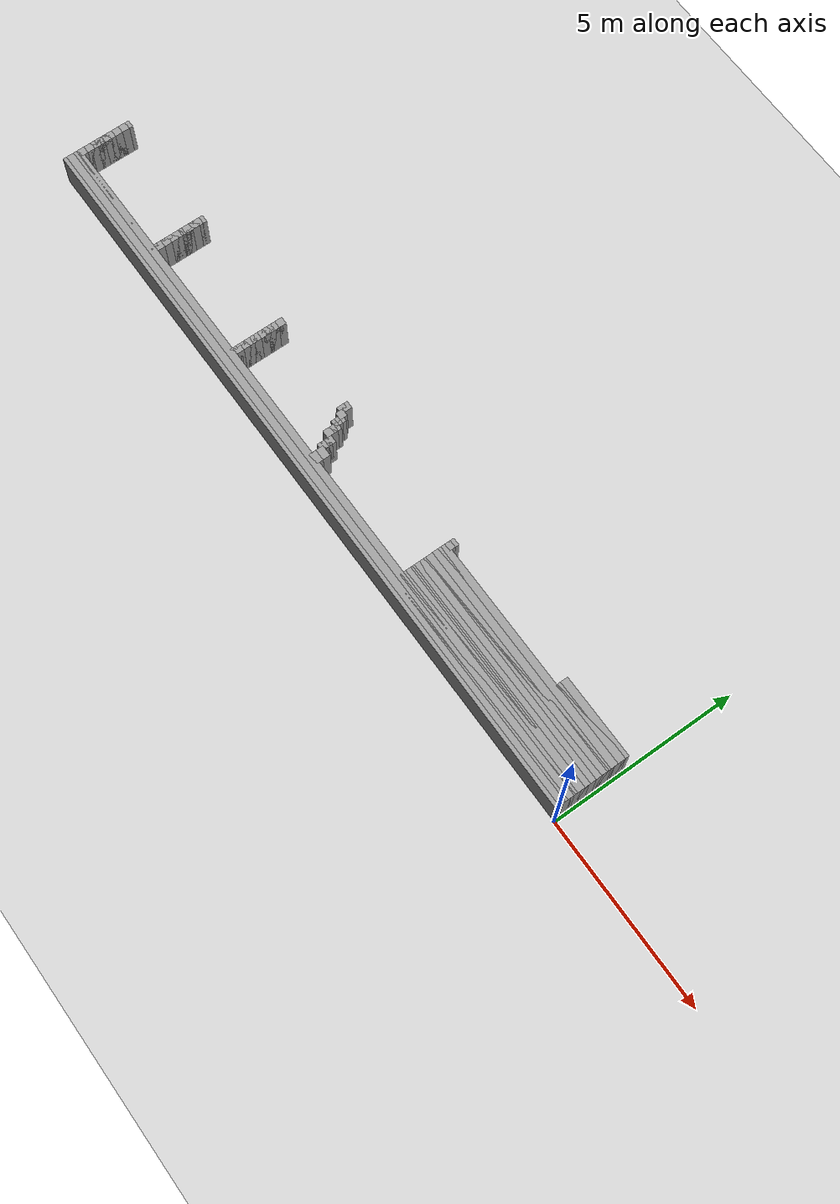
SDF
<sdf version="1.6">
 <world name="GridMap">
  <include><uri>model://sun</uri></include>
  <include><uri>model://ground_plane</uri></include>
  <model name="GridMap">
   <link name="Wall_(99.5,0.0)">
    <collision name="Wall_(99.5,0.0)_Collision">
     <geometry><box><size>19.900000000000002 0.2 1.0</size></box></geometry>
     <pose>-9.950000000000001 0.0 0.5 0 -0 0</pose>
    </collision>
    <visual name="Wall_(99.5,0.0)_Visual">
     <geometry><box><size>19.900000000000002 0.2 1.0</size></box></geometry>
     <pose>-9.950000000000001 0.0 0.5 0 -0 0</pose>
     <material>
      <script><uri>file://media/materials/scripts/gazebo.material</uri><name>Gazebo/Grey</name></script>
      <ambient>1 1 1 1</ambient>
     </material>
     <meta><layer>0</layer></meta>
    </visual>
    <pose>0 0 0.5 0 -0 0</pose>
   </link>
   <link name="Wall_(99.5,1.0)">
    <collision name="Wall_(99.5,1.0)_Collision">
     <geometry><box><size>19.900000000000002 0.2 1.0</size></box></geometry>
     <pose>-9.950000000000001 0.1 0.5 0 -0 0</pose>
    </collision>
    <visual name="Wall_(99.5,1.0)_Visual">
     <geometry><box><size>19.900000000000002 0.2 1.0</size></box></geometry>
     <pose>-9.950000000000001 0.1 0.5 0 -0 0</pose>
     <material>
      <script><uri>file://media/materials/scripts/gazebo.material</uri><name>Gazebo/Grey</name></script>
      <ambient>1 1 1 1</ambient>
     </material>
     <meta><layer>0</layer></meta>
    </visual>
    <pose>0 0 0.5 0 -0 0</pose>
   </link>
   <link name="Wall_(99.5,2.0)">
    <collision name="Wall_(99.5,2.0)_Collision">
     <geometry><box><size>19.900000000000002 0.2 1.0</size></box></geometry>
     <pose>-9.950000000000001 0.2 0.5 0 -0 0</pose>
    </collision>
    <visual name="Wall_(99.5,2.0)_Visual">
     <geometry><box><size>19.900000000000002 0.2 1.0</size></box></geometry>
     <pose>-9.950000000000001 0.2 0.5 0 -0 0</pose>
     <material>
      <script><uri>file://media/materials/scripts/gazebo.material</uri><name>Gazebo/Grey</name></script>
      <ambient>1 1 1 1</ambient>
     </material>
     <meta><layer>0</layer></meta>
    </visual>
    <pose>0 0 0.5 0 -0 0</pose>
   </link>
   <link name="Wall_(99.5,3.0)">
    <collision name="Wall_(99.5,3.0)_Collision">
     <geometry><box><size>19.900000000000002 0.2 1.0</size></box></geometry>
     <pose>-9.950000000000001 0.30000000000000004 0.5 0 -0 0</pose>
    </collision>
    <visual name="Wall_(99.5,3.0)_Visual">
     <geometry><box><size>19.900000000000002 0.2 1.0</size></box></geometry>
     <pose>-9.950000000000001 0.30000000000000004 0.5 0 -0 0</pose>
     <material>
      <script><uri>file://media/materials/scripts/gazebo.material</uri><name>Gazebo/Grey</name></script>
      <ambient>1 1 1 1</ambient>
     </material>
     <meta><layer>0</layer></meta>
    </visual>
    <pose>0 0 0.5 0 -0 0</pose>
   </link>
   <link name="Wall_(31.5,4.0)">
    <collision name="Wall_(31.5,4.0)_Collision">
     <geometry><box><size>6.300000000000001 0.2 1.0</size></box></geometry>
     <pose>-3.1500000000000004 0.4 0.5 0 -0 0</pose>
    </collision>
    <visual name="Wall_(31.5,4.0)_Visual">
     <geometry><box><size>6.300000000000001 0.2 1.0</size></box></geometry>
     <pose>-3.1500000000000004 0.4 0.5 0 -0 0</pose>
     <material>
      <script><uri>file://media/materials/scripts/gazebo.material</uri><name>Gazebo/Grey</name></script>
      <ambient>1 1 1 1</ambient>
     </material>
     <meta><layer>0</layer></meta>
    </visual>
    <pose>0 0 0.5 0 -0 0</pose>
   </link>
   <link name="Wall_(97.5,4.0)">
    <collision name="Wall_(97.5,4.0)_Collision">
     <geometry><box><size>0.30000000000000004 0.2 1.0</size></box></geometry>
     <pose>-9.75 0.4 0.5 0 -0 0</pose>
    </collision>
    <visual name="Wall_(97.5,4.0)_Visual">
     <geometry><box><size>0.30000000000000004 0.2 1.0</size></box></geometry>
     <pose>-9.75 0.4 0.5 0 -0 0</pose>
     <material>
      <script><uri>file://media/materials/scripts/gazebo.material</uri><name>Gazebo/Grey</name></script>
      <ambient>1 1 1 1</ambient>
     </material>
     <meta><layer>0</layer></meta>
    </visual>
    <pose>0 0 0.5 0 -0 0</pose>
   </link>
   <link name="Wall_(131.0,4.0)">
    <collision name="Wall_(131.0,4.0)_Collision">
     <geometry><box><size>0.2 0.2 1.0</size></box></geometry>
     <pose>-13.100000000000001 0.4 0.5 0 -0 0</pose>
    </collision>
    <visual name="Wall_(131.0,4.0)_Visual">
     <geometry><box><size>0.2 0.2 1.0</size></box></geometry>
     <pose>-13.100000000000001 0.4 0.5 0 -0 0</pose>
     <material>
      <script><uri>file://media/materials/scripts/gazebo.material</uri><name>Gazebo/Grey</name></script>
      <ambient>1 1 1 1</ambient>
     </material>
     <meta><layer>0</layer></meta>
    </visual>
    <pose>0 0 0.5 0 -0 0</pose>
   </link>
   <link name="Wall_(165.0,4.0)">
    <collision name="Wall_(165.0,4.0)_Collision">
     <geometry><box><size>0.2 0.2 1.0</size></box></geometry>
     <pose>-16.5 0.4 0.5 0 -0 0</pose>
    </collision>
    <visual name="Wall_(165.0,4.0)_Visual">
     <geometry><box><size>0.2 0.2 1.0</size></box></geometry>
     <pose>-16.5 0.4 0.5 0 -0 0</pose>
     <material>
      <script><uri>file://media/materials/scripts/gazebo.material</uri><name>Gazebo/Grey</name></script>
      <ambient>1 1 1 1</ambient>
     </material>
     <meta><layer>0</layer></meta>
    </visual>
    <pose>0 0 0.5 0 -0 0</pose>
   </link>
   <link name="Wall_(198.0,4.0)">
    <collision name="Wall_(198.0,4.0)_Collision">
     <geometry><box><size>0.2 0.2 1.0</size></box></geometry>
     <pose>-19.8 0.4 0.5 0 -0 0</pose>
    </collision>
    <visual name="Wall_(198.0,4.0)_Visual">
     <geometry><box><size>0.2 0.2 1.0</size></box></geometry>
     <pose>-19.8 0.4 0.5 0 -0 0</pose>
     <material>
      <script><uri>file://media/materials/scripts/gazebo.material</uri><name>Gazebo/Grey</name></script>
      <ambient>1 1 1 1</ambient>
     </material>
     <meta><layer>0</layer></meta>
    </visual>
    <pose>0 0 0.5 0 -0 0</pose>
   </link>
   <link name="Wall_(31.5,5.0)">
    <collision name="Wall_(31.5,5.0)_Collision">
     <geometry><box><size>6.300000000000001 0.2 1.0</size></box></geometry>
     <pose>-3.1500000000000004 0.5 0.5 0 -0 0</pose>
    </collision>
    <visual name="Wall_(31.5,5.0)_Visual">
     <geometry><box><size>6.300000000000001 0.2 1.0</size></box></geometry>
     <pose>-3.1500000000000004 0.5 0.5 0 -0 0</pose>
     <material>
      <script><uri>file://media/materials/scripts/gazebo.material</uri><name>Gazebo/Grey</name></script>
      <ambient>1 1 1 1</ambient>
     </material>
     <meta><layer>0</layer></meta>
    </visual>
    <pose>0 0 0.5 0 -0 0</pose>
   </link>
   <link name="Wall_(97.5,5.0)">
    <collision name="Wall_(97.5,5.0)_Collision">
     <geometry><box><size>0.30000000000000004 0.2 1.0</size></box></geometry>
     <pose>-9.75 0.5 0.5 0 -0 0</pose>
    </collision>
    <visual name="Wall_(97.5,5.0)_Visual">
     <geometry><box><size>0.30000000000000004 0.2 1.0</size></box></geometry>
     <pose>-9.75 0.5 0.5 0 -0 0</pose>
     <material>
      <script><uri>file://media/materials/scripts/gazebo.material</uri><name>Gazebo/Grey</name></script>
      <ambient>1 1 1 1</ambient>
     </material>
     <meta><layer>0</layer></meta>
    </visual>
    <pose>0 0 0.5 0 -0 0</pose>
   </link>
   <link name="Wall_(131.0,5.0)">
    <collision name="Wall_(131.0,5.0)_Collision">
     <geometry><box><size>0.2 0.2 1.0</size></box></geometry>
     <pose>-13.100000000000001 0.5 0.5 0 -0 0</pose>
    </collision>
    <visual name="Wall_(131.0,5.0)_Visual">
     <geometry><box><size>0.2 0.2 1.0</size></box></geometry>
     <pose>-13.100000000000001 0.5 0.5 0 -0 0</pose>
     <material>
      <script><uri>file://media/materials/scripts/gazebo.material</uri><name>Gazebo/Grey</name></script>
      <ambient>1 1 1 1</ambient>
     </material>
     <meta><layer>0</layer></meta>
    </visual>
    <pose>0 0 0.5 0 -0 0</pose>
   </link>
   <link name="Wall_(165.0,5.0)">
    <collision name="Wall_(165.0,5.0)_Collision">
     <geometry><box><size>0.2 0.2 1.0</size></box></geometry>
     <pose>-16.5 0.5 0.5 0 -0 0</pose>
    </collision>
    <visual name="Wall_(165.0,5.0)_Visual">
     <geometry><box><size>0.2 0.2 1.0</size></box></geometry>
     <pose>-16.5 0.5 0.5 0 -0 0</pose>
     <material>
      <script><uri>file://media/materials/scripts/gazebo.material</uri><name>Gazebo/Grey</name></script>
      <ambient>1 1 1 1</ambient>
     </material>
     <meta><layer>0</layer></meta>
    </visual>
    <pose>0 0 0.5 0 -0 0</pose>
   </link>
   <link name="Wall_(198.0,5.0)">
    <collision name="Wall_(198.0,5.0)_Collision">
     <geometry><box><size>0.2 0.2 1.0</size></box></geometry>
     <pose>-19.8 0.5 0.5 0 -0 0</pose>
    </collision>
    <visual name="Wall_(198.0,5.0)_Visual">
     <geometry><box><size>0.2 0.2 1.0</size></box></geometry>
     <pose>-19.8 0.5 0.5 0 -0 0</pose>
     <material>
      <script><uri>file://media/materials/scripts/gazebo.material</uri><name>Gazebo/Grey</name></script>
      <ambient>1 1 1 1</ambient>
     </material>
     <meta><layer>0</layer></meta>
    </visual>
    <pose>0 0 0.5 0 -0 0</pose>
   </link>
   <link name="Wall_(31.5,6.0)">
    <collision name="Wall_(31.5,6.0)_Collision">
     <geometry><box><size>6.300000000000001 0.2 1.0</size></box></geometry>
     <pose>-3.1500000000000004 0.6000000000000001 0.5 0 -0 0</pose>
    </collision>
    <visual name="Wall_(31.5,6.0)_Visual">
     <geometry><box><size>6.300000000000001 0.2 1.0</size></box></geometry>
     <pose>-3.1500000000000004 0.6000000000000001 0.5 0 -0 0</pose>
     <material>
      <script><uri>file://media/materials/scripts/gazebo.material</uri><name>Gazebo/Grey</name></script>
      <ambient>1 1 1 1</ambient>
     </material>
     <meta><layer>0</layer></meta>
    </visual>
    <pose>0 0 0.5 0 -0 0</pose>
   </link>
   <link name="Wall_(97.5,6.0)">
    <collision name="Wall_(97.5,6.0)_Collision">
     <geometry><box><size>0.30000000000000004 0.2 1.0</size></box></geometry>
     <pose>-9.75 0.6000000000000001 0.5 0 -0 0</pose>
    </collision>
    <visual name="Wall_(97.5,6.0)_Visual">
     <geometry><box><size>0.30000000000000004 0.2 1.0</size></box></geometry>
     <pose>-9.75 0.6000000000000001 0.5 0 -0 0</pose>
     <material>
      <script><uri>file://media/materials/scripts/gazebo.material</uri><name>Gazebo/Grey</name></script>
      <ambient>1 1 1 1</ambient>
     </material>
     <meta><layer>0</layer></meta>
    </visual>
    <pose>0 0 0.5 0 -0 0</pose>
   </link>
   <link name="Wall_(131.0,6.0)">
    <collision name="Wall_(131.0,6.0)_Collision">
     <geometry><box><size>0.2 0.2 1.0</size></box></geometry>
     <pose>-13.100000000000001 0.6000000000000001 0.5 0 -0 0</pose>
    </collision>
    <visual name="Wall_(131.0,6.0)_Visual">
     <geometry><box><size>0.2 0.2 1.0</size></box></geometry>
     <pose>-13.100000000000001 0.6000000000000001 0.5 0 -0 0</pose>
     <material>
      <script><uri>file://media/materials/scripts/gazebo.material</uri><name>Gazebo/Grey</name></script>
      <ambient>1 1 1 1</ambient>
     </material>
     <meta><layer>0</layer></meta>
    </visual>
    <pose>0 0 0.5 0 -0 0</pose>
   </link>
   <link name="Wall_(165.0,6.0)">
    <collision name="Wall_(165.0,6.0)_Collision">
     <geometry><box><size>0.2 0.2 1.0</size></box></geometry>
     <pose>-16.5 0.6000000000000001 0.5 0 -0 0</pose>
    </collision>
    <visual name="Wall_(165.0,6.0)_Visual">
     <geometry><box><size>0.2 0.2 1.0</size></box></geometry>
     <pose>-16.5 0.6000000000000001 0.5 0 -0 0</pose>
     <material>
      <script><uri>file://media/materials/scripts/gazebo.material</uri><name>Gazebo/Grey</name></script>
      <ambient>1 1 1 1</ambient>
     </material>
     <meta><layer>0</layer></meta>
    </visual>
    <pose>0 0 0.5 0 -0 0</pose>
   </link>
   <link name="Wall_(198.0,6.0)">
    <collision name="Wall_(198.0,6.0)_Collision">
     <geometry><box><size>0.2 0.2 1.0</size></box></geometry>
     <pose>-19.8 0.6000000000000001 0.5 0 -0 0</pose>
    </collision>
    <visual name="Wall_(198.0,6.0)_Visual">
     <geometry><box><size>0.2 0.2 1.0</size></box></geometry>
     <pose>-19.8 0.6000000000000001 0.5 0 -0 0</pose>
     <material>
      <script><uri>file://media/materials/scripts/gazebo.material</uri><name>Gazebo/Grey</name></script>
      <ambient>1 1 1 1</ambient>
     </material>
     <meta><layer>0</layer></meta>
    </visual>
    <pose>0 0 0.5 0 -0 0</pose>
   </link>
   <link name="Wall_(31.5,7.0)">
    <collision name="Wall_(31.5,7.0)_Collision">
     <geometry><box><size>6.300000000000001 0.2 1.0</size></box></geometry>
     <pose>-3.1500000000000004 0.7000000000000001 0.5 0 -0 0</pose>
    </collision>
    <visual name="Wall_(31.5,7.0)_Visual">
     <geometry><box><size>6.300000000000001 0.2 1.0</size></box></geometry>
     <pose>-3.1500000000000004 0.7000000000000001 0.5 0 -0 0</pose>
     <material>
      <script><uri>file://media/materials/scripts/gazebo.material</uri><name>Gazebo/Grey</name></script>
      <ambient>1 1 1 1</ambient>
     </material>
     <meta><layer>0</layer></meta>
    </visual>
    <pose>0 0 0.5 0 -0 0</pose>
   </link>
   <link name="Wall_(99.0,7.0)">
    <collision name="Wall_(99.0,7.0)_Collision">
     <geometry><box><size>0.2 0.2 1.0</size></box></geometry>
     <pose>-9.9 0.7000000000000001 0.5 0 -0 0</pose>
    </collision>
    <visual name="Wall_(99.0,7.0)_Visual">
     <geometry><box><size>0.2 0.2 1.0</size></box></geometry>
     <pose>-9.9 0.7000000000000001 0.5 0 -0 0</pose>
     <material>
      <script><uri>file://media/materials/scripts/gazebo.material</uri><name>Gazebo/Grey</name></script>
      <ambient>1 1 1 1</ambient>
     </material>
     <meta><layer>0</layer></meta>
    </visual>
    <pose>0 0 0.5 0 -0 0</pose>
   </link>
   <link name="Wall_(131.0,7.0)">
    <collision name="Wall_(131.0,7.0)_Collision">
     <geometry><box><size>0.2 0.2 1.0</size></box></geometry>
     <pose>-13.100000000000001 0.7000000000000001 0.5 0 -0 0</pose>
    </collision>
    <visual name="Wall_(131.0,7.0)_Visual">
     <geometry><box><size>0.2 0.2 1.0</size></box></geometry>
     <pose>-13.100000000000001 0.7000000000000001 0.5 0 -0 0</pose>
     <material>
      <script><uri>file://media/materials/scripts/gazebo.material</uri><name>Gazebo/Grey</name></script>
      <ambient>1 1 1 1</ambient>
     </material>
     <meta><layer>0</layer></meta>
    </visual>
    <pose>0 0 0.5 0 -0 0</pose>
   </link>
   <link name="Wall_(165.0,7.0)">
    <collision name="Wall_(165.0,7.0)_Collision">
     <geometry><box><size>0.2 0.2 1.0</size></box></geometry>
     <pose>-16.5 0.7000000000000001 0.5 0 -0 0</pose>
    </collision>
    <visual name="Wall_(165.0,7.0)_Visual">
     <geometry><box><size>0.2 0.2 1.0</size></box></geometry>
     <pose>-16.5 0.7000000000000001 0.5 0 -0 0</pose>
     <material>
      <script><uri>file://media/materials/scripts/gazebo.material</uri><name>Gazebo/Grey</name></script>
      <ambient>1 1 1 1</ambient>
     </material>
     <meta><layer>0</layer></meta>
    </visual>
    <pose>0 0 0.5 0 -0 0</pose>
   </link>
   <link name="Wall_(198.0,7.0)">
    <collision name="Wall_(198.0,7.0)_Collision">
     <geometry><box><size>0.2 0.2 1.0</size></box></geometry>
     <pose>-19.8 0.7000000000000001 0.5 0 -0 0</pose>
    </collision>
    <visual name="Wall_(198.0,7.0)_Visual">
     <geometry><box><size>0.2 0.2 1.0</size></box></geometry>
     <pose>-19.8 0.7000000000000001 0.5 0 -0 0</pose>
     <material>
      <script><uri>file://media/materials/scripts/gazebo.material</uri><name>Gazebo/Grey</name></script>
      <ambient>1 1 1 1</ambient>
     </material>
     <meta><layer>0</layer></meta>
    </visual>
    <pose>0 0 0.5 0 -0 0</pose>
   </link>
   <link name="Wall_(31.5,8.0)">
    <collision name="Wall_(31.5,8.0)_Collision">
     <geometry><box><size>6.300000000000001 0.2 1.0</size></box></geometry>
     <pose>-3.1500000000000004 0.8 0.5 0 -0 0</pose>
    </collision>
    <visual name="Wall_(31.5,8.0)_Visual">
     <geometry><box><size>6.300000000000001 0.2 1.0</size></box></geometry>
     <pose>-3.1500000000000004 0.8 0.5 0 -0 0</pose>
     <material>
      <script><uri>file://media/materials/scripts/gazebo.material</uri><name>Gazebo/Grey</name></script>
      <ambient>1 1 1 1</ambient>
     </material>
     <meta><layer>0</layer></meta>
    </visual>
    <pose>0 0 0.5 0 -0 0</pose>
   </link>
   <link name="Wall_(99.0,8.0)">
    <collision name="Wall_(99.0,8.0)_Collision">
     <geometry><box><size>0.2 0.2 1.0</size></box></geometry>
     <pose>-9.9 0.8 0.5 0 -0 0</pose>
    </collision>
    <visual name="Wall_(99.0,8.0)_Visual">
     <geometry><box><size>0.2 0.2 1.0</size></box></geometry>
     <pose>-9.9 0.8 0.5 0 -0 0</pose>
     <material>
      <script><uri>file://media/materials/scripts/gazebo.material</uri><name>Gazebo/Grey</name></script>
      <ambient>1 1 1 1</ambient>
     </material>
     <meta><layer>0</layer></meta>
    </visual>
    <pose>0 0 0.5 0 -0 0</pose>
   </link>
   <link name="Wall_(131.0,8.0)">
    <collision name="Wall_(131.0,8.0)_Collision">
     <geometry><box><size>0.2 0.2 1.0</size></box></geometry>
     <pose>-13.100000000000001 0.8 0.5 0 -0 0</pose>
    </collision>
    <visual name="Wall_(131.0,8.0)_Visual">
     <geometry><box><size>0.2 0.2 1.0</size></box></geometry>
     <pose>-13.100000000000001 0.8 0.5 0 -0 0</pose>
     <material>
      <script><uri>file://media/materials/scripts/gazebo.material</uri><name>Gazebo/Grey</name></script>
      <ambient>1 1 1 1</ambient>
     </material>
     <meta><layer>0</layer></meta>
    </visual>
    <pose>0 0 0.5 0 -0 0</pose>
   </link>
   <link name="Wall_(165.0,8.0)">
    <collision name="Wall_(165.0,8.0)_Collision">
     <geometry><box><size>0.2 0.2 1.0</size></box></geometry>
     <pose>-16.5 0.8 0.5 0 -0 0</pose>
    </collision>
    <visual name="Wall_(165.0,8.0)_Visual">
     <geometry><box><size>0.2 0.2 1.0</size></box></geometry>
     <pose>-16.5 0.8 0.5 0 -0 0</pose>
     <material>
      <script><uri>file://media/materials/scripts/gazebo.material</uri><name>Gazebo/Grey</name></script>
      <ambient>1 1 1 1</ambient>
     </material>
     <meta><layer>0</layer></meta>
    </visual>
    <pose>0 0 0.5 0 -0 0</pose>
   </link>
   <link name="Wall_(198.0,8.0)">
    <collision name="Wall_(198.0,8.0)_Collision">
     <geometry><box><size>0.2 0.2 1.0</size></box></geometry>
     <pose>-19.8 0.8 0.5 0 -0 0</pose>
    </collision>
    <visual name="Wall_(198.0,8.0)_Visual">
     <geometry><box><size>0.2 0.2 1.0</size></box></geometry>
     <pose>-19.8 0.8 0.5 0 -0 0</pose>
     <material>
      <script><uri>file://media/materials/scripts/gazebo.material</uri><name>Gazebo/Grey</name></script>
      <ambient>1 1 1 1</ambient>
     </material>
     <meta><layer>0</layer></meta>
    </visual>
    <pose>0 0 0.5 0 -0 0</pose>
   </link>
   <link name="Wall_(31.5,9.0)">
    <collision name="Wall_(31.5,9.0)_Collision">
     <geometry><box><size>6.300000000000001 0.2 1.0</size></box></geometry>
     <pose>-3.1500000000000004 0.9 0.5 0 -0 0</pose>
    </collision>
    <visual name="Wall_(31.5,9.0)_Visual">
     <geometry><box><size>6.300000000000001 0.2 1.0</size></box></geometry>
     <pose>-3.1500000000000004 0.9 0.5 0 -0 0</pose>
     <material>
      <script><uri>file://media/materials/scripts/gazebo.material</uri><name>Gazebo/Grey</name></script>
      <ambient>1 1 1 1</ambient>
     </material>
     <meta><layer>0</layer></meta>
    </visual>
    <pose>0 0 0.5 0 -0 0</pose>
   </link>
   <link name="Wall_(99.0,9.0)">
    <collision name="Wall_(99.0,9.0)_Collision">
     <geometry><box><size>0.2 0.2 1.0</size></box></geometry>
     <pose>-9.9 0.9 0.5 0 -0 0</pose>
    </collision>
    <visual name="Wall_(99.0,9.0)_Visual">
     <geometry><box><size>0.2 0.2 1.0</size></box></geometry>
     <pose>-9.9 0.9 0.5 0 -0 0</pose>
     <material>
      <script><uri>file://media/materials/scripts/gazebo.material</uri><name>Gazebo/Grey</name></script>
      <ambient>1 1 1 1</ambient>
     </material>
     <meta><layer>0</layer></meta>
    </visual>
    <pose>0 0 0.5 0 -0 0</pose>
   </link>
   <link name="Wall_(131.0,9.0)">
    <collision name="Wall_(131.0,9.0)_Collision">
     <geometry><box><size>0.2 0.2 1.0</size></box></geometry>
     <pose>-13.100000000000001 0.9 0.5 0 -0 0</pose>
    </collision>
    <visual name="Wall_(131.0,9.0)_Visual">
     <geometry><box><size>0.2 0.2 1.0</size></box></geometry>
     <pose>-13.100000000000001 0.9 0.5 0 -0 0</pose>
     <material>
      <script><uri>file://media/materials/scripts/gazebo.material</uri><name>Gazebo/Grey</name></script>
      <ambient>1 1 1 1</ambient>
     </material>
     <meta><layer>0</layer></meta>
    </visual>
    <pose>0 0 0.5 0 -0 0</pose>
   </link>
   <link name="Wall_(165.0,9.0)">
    <collision name="Wall_(165.0,9.0)_Collision">
     <geometry><box><size>0.2 0.2 1.0</size></box></geometry>
     <pose>-16.5 0.9 0.5 0 -0 0</pose>
    </collision>
    <visual name="Wall_(165.0,9.0)_Visual">
     <geometry><box><size>0.2 0.2 1.0</size></box></geometry>
     <pose>-16.5 0.9 0.5 0 -0 0</pose>
     <material>
      <script><uri>file://media/materials/scripts/gazebo.material</uri><name>Gazebo/Grey</name></script>
      <ambient>1 1 1 1</ambient>
     </material>
     <meta><layer>0</layer></meta>
    </visual>
    <pose>0 0 0.5 0 -0 0</pose>
   </link>
   <link name="Wall_(198.0,9.0)">
    <collision name="Wall_(198.0,9.0)_Collision">
     <geometry><box><size>0.2 0.2 1.0</size></box></geometry>
     <pose>-19.8 0.9 0.5 0 -0 0</pose>
    </collision>
    <visual name="Wall_(198.0,9.0)_Visual">
     <geometry><box><size>0.2 0.2 1.0</size></box></geometry>
     <pose>-19.8 0.9 0.5 0 -0 0</pose>
     <material>
      <script><uri>file://media/materials/scripts/gazebo.material</uri><name>Gazebo/Grey</name></script>
      <ambient>1 1 1 1</ambient>
     </material>
     <meta><layer>0</layer></meta>
    </visual>
    <pose>0 0 0.5 0 -0 0</pose>
   </link>
   <link name="Wall_(31.5,10.0)">
    <collision name="Wall_(31.5,10.0)_Collision">
     <geometry><box><size>6.300000000000001 0.2 1.0</size></box></geometry>
     <pose>-3.1500000000000004 1.0 0.5 0 -0 0</pose>
    </collision>
    <visual name="Wall_(31.5,10.0)_Visual">
     <geometry><box><size>6.300000000000001 0.2 1.0</size></box></geometry>
     <pose>-3.1500000000000004 1.0 0.5 0 -0 0</pose>
     <material>
      <script><uri>file://media/materials/scripts/gazebo.material</uri><name>Gazebo/Grey</name></script>
      <ambient>1 1 1 1</ambient>
     </material>
     <meta><layer>0</layer></meta>
    </visual>
    <pose>0 0 0.5 0 -0 0</pose>
   </link>
   <link name="Wall_(101.0,10.0)">
    <collision name="Wall_(101.0,10.0)_Collision">
     <geometry><box><size>0.2 0.2 1.0</size></box></geometry>
     <pose>-10.100000000000001 1.0 0.5 0 -0 0</pose>
    </collision>
    <visual name="Wall_(101.0,10.0)_Visual">
     <geometry><box><size>0.2 0.2 1.0</size></box></geometry>
     <pose>-10.100000000000001 1.0 0.5 0 -0 0</pose>
     <material>
      <script><uri>file://media/materials/scripts/gazebo.material</uri><name>Gazebo/Grey</name></script>
      <ambient>1 1 1 1</ambient>
     </material>
     <meta><layer>0</layer></meta>
    </visual>
    <pose>0 0 0.5 0 -0 0</pose>
   </link>
   <link name="Wall_(131.0,10.0)">
    <collision name="Wall_(131.0,10.0)_Collision">
     <geometry><box><size>0.2 0.2 1.0</size></box></geometry>
     <pose>-13.100000000000001 1.0 0.5 0 -0 0</pose>
    </collision>
    <visual name="Wall_(131.0,10.0)_Visual">
     <geometry><box><size>0.2 0.2 1.0</size></box></geometry>
     <pose>-13.100000000000001 1.0 0.5 0 -0 0</pose>
     <material>
      <script><uri>file://media/materials/scripts/gazebo.material</uri><name>Gazebo/Grey</name></script>
      <ambient>1 1 1 1</ambient>
     </material>
     <meta><layer>0</layer></meta>
    </visual>
    <pose>0 0 0.5 0 -0 0</pose>
   </link>
   <link name="Wall_(165.0,10.0)">
    <collision name="Wall_(165.0,10.0)_Collision">
     <geometry><box><size>0.2 0.2 1.0</size></box></geometry>
     <pose>-16.5 1.0 0.5 0 -0 0</pose>
    </collision>
    <visual name="Wall_(165.0,10.0)_Visual">
     <geometry><box><size>0.2 0.2 1.0</size></box></geometry>
     <pose>-16.5 1.0 0.5 0 -0 0</pose>
     <material>
      <script><uri>file://media/materials/scripts/gazebo.material</uri><name>Gazebo/Grey</name></script>
      <ambient>1 1 1 1</ambient>
     </material>
     <meta><layer>0</layer></meta>
    </visual>
    <pose>0 0 0.5 0 -0 0</pose>
   </link>
   <link name="Wall_(198.0,10.0)">
    <collision name="Wall_(198.0,10.0)_Collision">
     <geometry><box><size>0.2 0.2 1.0</size></box></geometry>
     <pose>-19.8 1.0 0.5 0 -0 0</pose>
    </collision>
    <visual name="Wall_(198.0,10.0)_Visual">
     <geometry><box><size>0.2 0.2 1.0</size></box></geometry>
     <pose>-19.8 1.0 0.5 0 -0 0</pose>
     <material>
      <script><uri>file://media/materials/scripts/gazebo.material</uri><name>Gazebo/Grey</name></script>
      <ambient>1 1 1 1</ambient>
     </material>
     <meta><layer>0</layer></meta>
    </visual>
    <pose>0 0 0.5 0 -0 0</pose>
   </link>
   <link name="Wall_(31.5,11.0)">
    <collision name="Wall_(31.5,11.0)_Collision">
     <geometry><box><size>6.300000000000001 0.2 1.0</size></box></geometry>
     <pose>-3.1500000000000004 1.1 0.5 0 -0 0</pose>
    </collision>
    <visual name="Wall_(31.5,11.0)_Visual">
     <geometry><box><size>6.300000000000001 0.2 1.0</size></box></geometry>
     <pose>-3.1500000000000004 1.1 0.5 0 -0 0</pose>
     <material>
      <script><uri>file://media/materials/scripts/gazebo.material</uri><name>Gazebo/Grey</name></script>
      <ambient>1 1 1 1</ambient>
     </material>
     <meta><layer>0</layer></meta>
    </visual>
    <pose>0 0 0.5 0 -0 0</pose>
   </link>
   <link name="Wall_(101.0,11.0)">
    <collision name="Wall_(101.0,11.0)_Collision">
     <geometry><box><size>0.2 0.2 1.0</size></box></geometry>
     <pose>-10.100000000000001 1.1 0.5 0 -0 0</pose>
    </collision>
    <visual name="Wall_(101.0,11.0)_Visual">
     <geometry><box><size>0.2 0.2 1.0</size></box></geometry>
     <pose>-10.100000000000001 1.1 0.5 0 -0 0</pose>
     <material>
      <script><uri>file://media/materials/scripts/gazebo.material</uri><name>Gazebo/Grey</name></script>
      <ambient>1 1 1 1</ambient>
     </material>
     <meta><layer>0</layer></meta>
    </visual>
    <pose>0 0 0.5 0 -0 0</pose>
   </link>
   <link name="Wall_(131.0,11.0)">
    <collision name="Wall_(131.0,11.0)_Collision">
     <geometry><box><size>0.2 0.2 1.0</size></box></geometry>
     <pose>-13.100000000000001 1.1 0.5 0 -0 0</pose>
    </collision>
    <visual name="Wall_(131.0,11.0)_Visual">
     <geometry><box><size>0.2 0.2 1.0</size></box></geometry>
     <pose>-13.100000000000001 1.1 0.5 0 -0 0</pose>
     <material>
      <script><uri>file://media/materials/scripts/gazebo.material</uri><name>Gazebo/Grey</name></script>
      <ambient>1 1 1 1</ambient>
     </material>
     <meta><layer>0</layer></meta>
    </visual>
    <pose>0 0 0.5 0 -0 0</pose>
   </link>
   <link name="Wall_(165.0,11.0)">
    <collision name="Wall_(165.0,11.0)_Collision">
     <geometry><box><size>0.2 0.2 1.0</size></box></geometry>
     <pose>-16.5 1.1 0.5 0 -0 0</pose>
    </collision>
    <visual name="Wall_(165.0,11.0)_Visual">
     <geometry><box><size>0.2 0.2 1.0</size></box></geometry>
     <pose>-16.5 1.1 0.5 0 -0 0</pose>
     <material>
      <script><uri>file://media/materials/scripts/gazebo.material</uri><name>Gazebo/Grey</name></script>
      <ambient>1 1 1 1</ambient>
     </material>
     <meta><layer>0</layer></meta>
    </visual>
    <pose>0 0 0.5 0 -0 0</pose>
   </link>
   <link name="Wall_(198.0,11.0)">
    <collision name="Wall_(198.0,11.0)_Collision">
     <geometry><box><size>0.2 0.2 1.0</size></box></geometry>
     <pose>-19.8 1.1 0.5 0 -0 0</pose>
    </collision>
    <visual name="Wall_(198.0,11.0)_Visual">
     <geometry><box><size>0.2 0.2 1.0</size></box></geometry>
     <pose>-19.8 1.1 0.5 0 -0 0</pose>
     <material>
      <script><uri>file://media/materials/scripts/gazebo.material</uri><name>Gazebo/Grey</name></script>
      <ambient>1 1 1 1</ambient>
     </material>
     <meta><layer>0</layer></meta>
    </visual>
    <pose>0 0 0.5 0 -0 0</pose>
   </link>
   <link name="Wall_(31.5,12.0)">
    <collision name="Wall_(31.5,12.0)_Collision">
     <geometry><box><size>6.300000000000001 0.2 1.0</size></box></geometry>
     <pose>-3.1500000000000004 1.2000000000000002 0.5 0 -0 0</pose>
    </collision>
    <visual name="Wall_(31.5,12.0)_Visual">
     <geometry><box><size>6.300000000000001 0.2 1.0</size></box></geometry>
     <pose>-3.1500000000000004 1.2000000000000002 0.5 0 -0 0</pose>
     <material>
      <script><uri>file://media/materials/scripts/gazebo.material</uri><name>Gazebo/Grey</name></script>
      <ambient>1 1 1 1</ambient>
     </material>
     <meta><layer>0</layer></meta>
    </visual>
    <pose>0 0 0.5 0 -0 0</pose>
   </link>
   <link name="Wall_(101.0,12.0)">
    <collision name="Wall_(101.0,12.0)_Collision">
     <geometry><box><size>0.2 0.2 1.0</size></box></geometry>
     <pose>-10.100000000000001 1.2000000000000002 0.5 0 -0 0</pose>
    </collision>
    <visual name="Wall_(101.0,12.0)_Visual">
     <geometry><box><size>0.2 0.2 1.0</size></box></geometry>
     <pose>-10.100000000000001 1.2000000000000002 0.5 0 -0 0</pose>
     <material>
      <script><uri>file://media/materials/scripts/gazebo.material</uri><name>Gazebo/Grey</name></script>
      <ambient>1 1 1 1</ambient>
     </material>
     <meta><layer>0</layer></meta>
    </visual>
    <pose>0 0 0.5 0 -0 0</pose>
   </link>
   <link name="Wall_(131.0,12.0)">
    <collision name="Wall_(131.0,12.0)_Collision">
     <geometry><box><size>0.2 0.2 1.0</size></box></geometry>
     <pose>-13.100000000000001 1.2000000000000002 0.5 0 -0 0</pose>
    </collision>
    <visual name="Wall_(131.0,12.0)_Visual">
     <geometry><box><size>0.2 0.2 1.0</size></box></geometry>
     <pose>-13.100000000000001 1.2000000000000002 0.5 0 -0 0</pose>
     <material>
      <script><uri>file://media/materials/scripts/gazebo.material</uri><name>Gazebo/Grey</name></script>
      <ambient>1 1 1 1</ambient>
     </material>
     <meta><layer>0</layer></meta>
    </visual>
    <pose>0 0 0.5 0 -0 0</pose>
   </link>
   <link name="Wall_(165.0,12.0)">
    <collision name="Wall_(165.0,12.0)_Collision">
     <geometry><box><size>0.2 0.2 1.0</size></box></geometry>
     <pose>-16.5 1.2000000000000002 0.5 0 -0 0</pose>
    </collision>
    <visual name="Wall_(165.0,12.0)_Visual">
     <geometry><box><size>0.2 0.2 1.0</size></box></geometry>
     <pose>-16.5 1.2000000000000002 0.5 0 -0 0</pose>
     <material>
      <script><uri>file://media/materials/scripts/gazebo.material</uri><name>Gazebo/Grey</name></script>
      <ambient>1 1 1 1</ambient>
     </material>
     <meta><layer>0</layer></meta>
    </visual>
    <pose>0 0 0.5 0 -0 0</pose>
   </link>
   <link name="Wall_(198.0,12.0)">
    <collision name="Wall_(198.0,12.0)_Collision">
     <geometry><box><size>0.2 0.2 1.0</size></box></geometry>
     <pose>-19.8 1.2000000000000002 0.5 0 -0 0</pose>
    </collision>
    <visual name="Wall_(198.0,12.0)_Visual">
     <geometry><box><size>0.2 0.2 1.0</size></box></geometry>
     <pose>-19.8 1.2000000000000002 0.5 0 -0 0</pose>
     <material>
      <script><uri>file://media/materials/scripts/gazebo.material</uri><name>Gazebo/Grey</name></script>
      <ambient>1 1 1 1</ambient>
     </material>
     <meta><layer>0</layer></meta>
    </visual>
    <pose>0 0 0.5 0 -0 0</pose>
   </link>
   <link name="Wall_(31.5,13.0)">
    <collision name="Wall_(31.5,13.0)_Collision">
     <geometry><box><size>6.300000000000001 0.2 1.0</size></box></geometry>
     <pose>-3.1500000000000004 1.3 0.5 0 -0 0</pose>
    </collision>
    <visual name="Wall_(31.5,13.0)_Visual">
     <geometry><box><size>6.300000000000001 0.2 1.0</size></box></geometry>
     <pose>-3.1500000000000004 1.3 0.5 0 -0 0</pose>
     <material>
      <script><uri>file://media/materials/scripts/gazebo.material</uri><name>Gazebo/Grey</name></script>
      <ambient>1 1 1 1</ambient>
     </material>
     <meta><layer>0</layer></meta>
    </visual>
    <pose>0 0 0.5 0 -0 0</pose>
   </link>
   <link name="Wall_(102.0,13.0)">
    <collision name="Wall_(102.0,13.0)_Collision">
     <geometry><box><size>0.2 0.2 1.0</size></box></geometry>
     <pose>-10.200000000000001 1.3 0.5 0 -0 0</pose>
    </collision>
    <visual name="Wall_(102.0,13.0)_Visual">
     <geometry><box><size>0.2 0.2 1.0</size></box></geometry>
     <pose>-10.200000000000001 1.3 0.5 0 -0 0</pose>
     <material>
      <script><uri>file://media/materials/scripts/gazebo.material</uri><name>Gazebo/Grey</name></script>
      <ambient>1 1 1 1</ambient>
     </material>
     <meta><layer>0</layer></meta>
    </visual>
    <pose>0 0 0.5 0 -0 0</pose>
   </link>
   <link name="Wall_(131.0,13.0)">
    <collision name="Wall_(131.0,13.0)_Collision">
     <geometry><box><size>0.2 0.2 1.0</size></box></geometry>
     <pose>-13.100000000000001 1.3 0.5 0 -0 0</pose>
    </collision>
    <visual name="Wall_(131.0,13.0)_Visual">
     <geometry><box><size>0.2 0.2 1.0</size></box></geometry>
     <pose>-13.100000000000001 1.3 0.5 0 -0 0</pose>
     <material>
      <script><uri>file://media/materials/scripts/gazebo.material</uri><name>Gazebo/Grey</name></script>
      <ambient>1 1 1 1</ambient>
     </material>
     <meta><layer>0</layer></meta>
    </visual>
    <pose>0 0 0.5 0 -0 0</pose>
   </link>
   <link name="Wall_(165.0,13.0)">
    <collision name="Wall_(165.0,13.0)_Collision">
     <geometry><box><size>0.2 0.2 1.0</size></box></geometry>
     <pose>-16.5 1.3 0.5 0 -0 0</pose>
    </collision>
    <visual name="Wall_(165.0,13.0)_Visual">
     <geometry><box><size>0.2 0.2 1.0</size></box></geometry>
     <pose>-16.5 1.3 0.5 0 -0 0</pose>
     <material>
      <script><uri>file://media/materials/scripts/gazebo.material</uri><name>Gazebo/Grey</name></script>
      <ambient>1 1 1 1</ambient>
     </material>
     <meta><layer>0</layer></meta>
    </visual>
    <pose>0 0 0.5 0 -0 0</pose>
   </link>
   <link name="Wall_(198.0,13.0)">
    <collision name="Wall_(198.0,13.0)_Collision">
     <geometry><box><size>0.2 0.2 1.0</size></box></geometry>
     <pose>-19.8 1.3 0.5 0 -0 0</pose>
    </collision>
    <visual name="Wall_(198.0,13.0)_Visual">
     <geometry><box><size>0.2 0.2 1.0</size></box></geometry>
     <pose>-19.8 1.3 0.5 0 -0 0</pose>
     <material>
      <script><uri>file://media/materials/scripts/gazebo.material</uri><name>Gazebo/Grey</name></script>
      <ambient>1 1 1 1</ambient>
     </material>
     <meta><layer>0</layer></meta>
    </visual>
    <pose>0 0 0.5 0 -0 0</pose>
   </link>
   <link name="Wall_(31.5,14.0)">
    <collision name="Wall_(31.5,14.0)_Collision">
     <geometry><box><size>6.300000000000001 0.2 1.0</size></box></geometry>
     <pose>-3.1500000000000004 1.4000000000000001 0.5 0 -0 0</pose>
    </collision>
    <visual name="Wall_(31.5,14.0)_Visual">
     <geometry><box><size>6.300000000000001 0.2 1.0</size></box></geometry>
     <pose>-3.1500000000000004 1.4000000000000001 0.5 0 -0 0</pose>
     <material>
      <script><uri>file://media/materials/scripts/gazebo.material</uri><name>Gazebo/Grey</name></script>
      <ambient>1 1 1 1</ambient>
     </material>
     <meta><layer>0</layer></meta>
    </visual>
    <pose>0 0 0.5 0 -0 0</pose>
   </link>
   <link name="Wall_(102.0,14.0)">
    <collision name="Wall_(102.0,14.0)_Collision">
     <geometry><box><size>0.2 0.2 1.0</size></box></geometry>
     <pose>-10.200000000000001 1.4000000000000001 0.5 0 -0 0</pose>
    </collision>
    <visual name="Wall_(102.0,14.0)_Visual">
     <geometry><box><size>0.2 0.2 1.0</size></box></geometry>
     <pose>-10.200000000000001 1.4000000000000001 0.5 0 -0 0</pose>
     <material>
      <script><uri>file://media/materials/scripts/gazebo.material</uri><name>Gazebo/Grey</name></script>
      <ambient>1 1 1 1</ambient>
     </material>
     <meta><layer>0</layer></meta>
    </visual>
    <pose>0 0 0.5 0 -0 0</pose>
   </link>
   <link name="Wall_(131.0,14.0)">
    <collision name="Wall_(131.0,14.0)_Collision">
     <geometry><box><size>0.2 0.2 1.0</size></box></geometry>
     <pose>-13.100000000000001 1.4000000000000001 0.5 0 -0 0</pose>
    </collision>
    <visual name="Wall_(131.0,14.0)_Visual">
     <geometry><box><size>0.2 0.2 1.0</size></box></geometry>
     <pose>-13.100000000000001 1.4000000000000001 0.5 0 -0 0</pose>
     <material>
      <script><uri>file://media/materials/scripts/gazebo.material</uri><name>Gazebo/Grey</name></script>
      <ambient>1 1 1 1</ambient>
     </material>
     <meta><layer>0</layer></meta>
    </visual>
    <pose>0 0 0.5 0 -0 0</pose>
   </link>
   <link name="Wall_(165.0,14.0)">
    <collision name="Wall_(165.0,14.0)_Collision">
     <geometry><box><size>0.2 0.2 1.0</size></box></geometry>
     <pose>-16.5 1.4000000000000001 0.5 0 -0 0</pose>
    </collision>
    <visual name="Wall_(165.0,14.0)_Visual">
     <geometry><box><size>0.2 0.2 1.0</size></box></geometry>
     <pose>-16.5 1.4000000000000001 0.5 0 -0 0</pose>
     <material>
      <script><uri>file://media/materials/scripts/gazebo.material</uri><name>Gazebo/Grey</name></script>
      <ambient>1 1 1 1</ambient>
     </material>
     <meta><layer>0</layer></meta>
    </visual>
    <pose>0 0 0.5 0 -0 0</pose>
   </link>
   <link name="Wall_(198.0,14.0)">
    <collision name="Wall_(198.0,14.0)_Collision">
     <geometry><box><size>0.2 0.2 1.0</size></box></geometry>
     <pose>-19.8 1.4000000000000001 0.5 0 -0 0</pose>
    </collision>
    <visual name="Wall_(198.0,14.0)_Visual">
     <geometry><box><size>0.2 0.2 1.0</size></box></geometry>
     <pose>-19.8 1.4000000000000001 0.5 0 -0 0</pose>
     <material>
      <script><uri>file://media/materials/scripts/gazebo.material</uri><name>Gazebo/Grey</name></script>
      <ambient>1 1 1 1</ambient>
     </material>
     <meta><layer>0</layer></meta>
    </visual>
    <pose>0 0 0.5 0 -0 0</pose>
   </link>
   <link name="Wall_(31.5,15.0)">
    <collision name="Wall_(31.5,15.0)_Collision">
     <geometry><box><size>6.300000000000001 0.2 1.0</size></box></geometry>
     <pose>-3.1500000000000004 1.5 0.5 0 -0 0</pose>
    </collision>
    <visual name="Wall_(31.5,15.0)_Visual">
     <geometry><box><size>6.300000000000001 0.2 1.0</size></box></geometry>
     <pose>-3.1500000000000004 1.5 0.5 0 -0 0</pose>
     <material>
      <script><uri>file://media/materials/scripts/gazebo.material</uri><name>Gazebo/Grey</name></script>
      <ambient>1 1 1 1</ambient>
     </material>
     <meta><layer>0</layer></meta>
    </visual>
    <pose>0 0 0.5 0 -0 0</pose>
   </link>
   <link name="Wall_(103.0,15.0)">
    <collision name="Wall_(103.0,15.0)_Collision">
     <geometry><box><size>0.2 0.2 1.0</size></box></geometry>
     <pose>-10.3 1.5 0.5 0 -0 0</pose>
    </collision>
    <visual name="Wall_(103.0,15.0)_Visual">
     <geometry><box><size>0.2 0.2 1.0</size></box></geometry>
     <pose>-10.3 1.5 0.5 0 -0 0</pose>
     <material>
      <script><uri>file://media/materials/scripts/gazebo.material</uri><name>Gazebo/Grey</name></script>
      <ambient>1 1 1 1</ambient>
     </material>
     <meta><layer>0</layer></meta>
    </visual>
    <pose>0 0 0.5 0 -0 0</pose>
   </link>
   <link name="Wall_(131.0,15.0)">
    <collision name="Wall_(131.0,15.0)_Collision">
     <geometry><box><size>0.2 0.2 1.0</size></box></geometry>
     <pose>-13.100000000000001 1.5 0.5 0 -0 0</pose>
    </collision>
    <visual name="Wall_(131.0,15.0)_Visual">
     <geometry><box><size>0.2 0.2 1.0</size></box></geometry>
     <pose>-13.100000000000001 1.5 0.5 0 -0 0</pose>
     <material>
      <script><uri>file://media/materials/scripts/gazebo.material</uri><name>Gazebo/Grey</name></script>
      <ambient>1 1 1 1</ambient>
     </material>
     <meta><layer>0</layer></meta>
    </visual>
    <pose>0 0 0.5 0 -0 0</pose>
   </link>
   <link name="Wall_(165.0,15.0)">
    <collision name="Wall_(165.0,15.0)_Collision">
     <geometry><box><size>0.2 0.2 1.0</size></box></geometry>
     <pose>-16.5 1.5 0.5 0 -0 0</pose>
    </collision>
    <visual name="Wall_(165.0,15.0)_Visual">
     <geometry><box><size>0.2 0.2 1.0</size></box></geometry>
     <pose>-16.5 1.5 0.5 0 -0 0</pose>
     <material>
      <script><uri>file://media/materials/scripts/gazebo.material</uri><name>Gazebo/Grey</name></script>
      <ambient>1 1 1 1</ambient>
     </material>
     <meta><layer>0</layer></meta>
    </visual>
    <pose>0 0 0.5 0 -0 0</pose>
   </link>
   <link name="Wall_(198.0,15.0)">
    <collision name="Wall_(198.0,15.0)_Collision">
     <geometry><box><size>0.2 0.2 1.0</size></box></geometry>
     <pose>-19.8 1.5 0.5 0 -0 0</pose>
    </collision>
    <visual name="Wall_(198.0,15.0)_Visual">
     <geometry><box><size>0.2 0.2 1.0</size></box></geometry>
     <pose>-19.8 1.5 0.5 0 -0 0</pose>
     <material>
      <script><uri>file://media/materials/scripts/gazebo.material</uri><name>Gazebo/Grey</name></script>
      <ambient>1 1 1 1</ambient>
     </material>
     <meta><layer>0</layer></meta>
    </visual>
    <pose>0 0 0.5 0 -0 0</pose>
   </link>
   <link name="Wall_(11.0,16.0)">
    <collision name="Wall_(11.0,16.0)_Collision">
     <geometry><box><size>2.2 0.2 1.0</size></box></geometry>
     <pose>-1.1 1.6 0.5 0 -0 0</pose>
    </collision>
    <visual name="Wall_(11.0,16.0)_Visual">
     <geometry><box><size>2.2 0.2 1.0</size></box></geometry>
     <pose>-1.1 1.6 0.5 0 -0 0</pose>
     <material>
      <script><uri>file://media/materials/scripts/gazebo.material</uri><name>Gazebo/Grey</name></script>
      <ambient>1 1 1 1</ambient>
     </material>
     <meta><layer>0</layer></meta>
    </visual>
    <pose>0 0 0.5 0 -0 0</pose>
   </link>
   <link name="Wall_(62.0,16.0)">
    <collision name="Wall_(62.0,16.0)_Collision">
     <geometry><box><size>0.2 0.2 1.0</size></box></geometry>
     <pose>-6.2 1.6 0.5 0 -0 0</pose>
    </collision>
    <visual name="Wall_(62.0,16.0)_Visual">
     <geometry><box><size>0.2 0.2 1.0</size></box></geometry>
     <pose>-6.2 1.6 0.5 0 -0 0</pose>
     <material>
      <script><uri>file://media/materials/scripts/gazebo.material</uri><name>Gazebo/Grey</name></script>
      <ambient>1 1 1 1</ambient>
     </material>
     <meta><layer>0</layer></meta>
    </visual>
    <pose>0 0 0.5 0 -0 0</pose>
   </link>
   <link name="Wall_(104.0,16.0)">
    <collision name="Wall_(104.0,16.0)_Collision">
     <geometry><box><size>0.2 0.2 1.0</size></box></geometry>
     <pose>-10.4 1.6 0.5 0 -0 0</pose>
    </collision>
    <visual name="Wall_(104.0,16.0)_Visual">
     <geometry><box><size>0.2 0.2 1.0</size></box></geometry>
     <pose>-10.4 1.6 0.5 0 -0 0</pose>
     <material>
      <script><uri>file://media/materials/scripts/gazebo.material</uri><name>Gazebo/Grey</name></script>
      <ambient>1 1 1 1</ambient>
     </material>
     <meta><layer>0</layer></meta>
    </visual>
    <pose>0 0 0.5 0 -0 0</pose>
   </link>
   <link name="Wall_(131.0,16.0)">
    <collision name="Wall_(131.0,16.0)_Collision">
     <geometry><box><size>0.2 0.2 1.0</size></box></geometry>
     <pose>-13.100000000000001 1.6 0.5 0 -0 0</pose>
    </collision>
    <visual name="Wall_(131.0,16.0)_Visual">
     <geometry><box><size>0.2 0.2 1.0</size></box></geometry>
     <pose>-13.100000000000001 1.6 0.5 0 -0 0</pose>
     <material>
      <script><uri>file://media/materials/scripts/gazebo.material</uri><name>Gazebo/Grey</name></script>
      <ambient>1 1 1 1</ambient>
     </material>
     <meta><layer>0</layer></meta>
    </visual>
    <pose>0 0 0.5 0 -0 0</pose>
   </link>
   <link name="Wall_(165.0,16.0)">
    <collision name="Wall_(165.0,16.0)_Collision">
     <geometry><box><size>0.2 0.2 1.0</size></box></geometry>
     <pose>-16.5 1.6 0.5 0 -0 0</pose>
    </collision>
    <visual name="Wall_(165.0,16.0)_Visual">
     <geometry><box><size>0.2 0.2 1.0</size></box></geometry>
     <pose>-16.5 1.6 0.5 0 -0 0</pose>
     <material>
      <script><uri>file://media/materials/scripts/gazebo.material</uri><name>Gazebo/Grey</name></script>
      <ambient>1 1 1 1</ambient>
     </material>
     <meta><layer>0</layer></meta>
    </visual>
    <pose>0 0 0.5 0 -0 0</pose>
   </link>
   <link name="Wall_(198.0,16.0)">
    <collision name="Wall_(198.0,16.0)_Collision">
     <geometry><box><size>0.2 0.2 1.0</size></box></geometry>
     <pose>-19.8 1.6 0.5 0 -0 0</pose>
    </collision>
    <visual name="Wall_(198.0,16.0)_Visual">
     <geometry><box><size>0.2 0.2 1.0</size></box></geometry>
     <pose>-19.8 1.6 0.5 0 -0 0</pose>
     <material>
      <script><uri>file://media/materials/scripts/gazebo.material</uri><name>Gazebo/Grey</name></script>
      <ambient>1 1 1 1</ambient>
     </material>
     <meta><layer>0</layer></meta>
    </visual>
    <pose>0 0 0.5 0 -0 0</pose>
   </link>
   <link name="Wall_(11.0,17.0)">
    <collision name="Wall_(11.0,17.0)_Collision">
     <geometry><box><size>2.2 0.2 1.0</size></box></geometry>
     <pose>-1.1 1.7000000000000002 0.5 0 -0 0</pose>
    </collision>
    <visual name="Wall_(11.0,17.0)_Visual">
     <geometry><box><size>2.2 0.2 1.0</size></box></geometry>
     <pose>-1.1 1.7000000000000002 0.5 0 -0 0</pose>
     <material>
      <script><uri>file://media/materials/scripts/gazebo.material</uri><name>Gazebo/Grey</name></script>
      <ambient>1 1 1 1</ambient>
     </material>
     <meta><layer>0</layer></meta>
    </visual>
    <pose>0 0 0.5 0 -0 0</pose>
   </link>
   <link name="Wall_(62.0,17.0)">
    <collision name="Wall_(62.0,17.0)_Collision">
     <geometry><box><size>0.2 0.2 1.0</size></box></geometry>
     <pose>-6.2 1.7000000000000002 0.5 0 -0 0</pose>
    </collision>
    <visual name="Wall_(62.0,17.0)_Visual">
     <geometry><box><size>0.2 0.2 1.0</size></box></geometry>
     <pose>-6.2 1.7000000000000002 0.5 0 -0 0</pose>
     <material>
      <script><uri>file://media/materials/scripts/gazebo.material</uri><name>Gazebo/Grey</name></script>
      <ambient>1 1 1 1</ambient>
     </material>
     <meta><layer>0</layer></meta>
    </visual>
    <pose>0 0 0.5 0 -0 0</pose>
   </link>
   <link name="Wall_(104.0,17.0)">
    <collision name="Wall_(104.0,17.0)_Collision">
     <geometry><box><size>0.2 0.2 1.0</size></box></geometry>
     <pose>-10.4 1.7000000000000002 0.5 0 -0 0</pose>
    </collision>
    <visual name="Wall_(104.0,17.0)_Visual">
     <geometry><box><size>0.2 0.2 1.0</size></box></geometry>
     <pose>-10.4 1.7000000000000002 0.5 0 -0 0</pose>
     <material>
      <script><uri>file://media/materials/scripts/gazebo.material</uri><name>Gazebo/Grey</name></script>
      <ambient>1 1 1 1</ambient>
     </material>
     <meta><layer>0</layer></meta>
    </visual>
    <pose>0 0 0.5 0 -0 0</pose>
   </link>
   <link name="Wall_(131.0,17.0)">
    <collision name="Wall_(131.0,17.0)_Collision">
     <geometry><box><size>0.2 0.2 1.0</size></box></geometry>
     <pose>-13.100000000000001 1.7000000000000002 0.5 0 -0 0</pose>
    </collision>
    <visual name="Wall_(131.0,17.0)_Visual">
     <geometry><box><size>0.2 0.2 1.0</size></box></geometry>
     <pose>-13.100000000000001 1.7000000000000002 0.5 0 -0 0</pose>
     <material>
      <script><uri>file://media/materials/scripts/gazebo.material</uri><name>Gazebo/Grey</name></script>
      <ambient>1 1 1 1</ambient>
     </material>
     <meta><layer>0</layer></meta>
    </visual>
    <pose>0 0 0.5 0 -0 0</pose>
   </link>
   <link name="Wall_(165.0,17.0)">
    <collision name="Wall_(165.0,17.0)_Collision">
     <geometry><box><size>0.2 0.2 1.0</size></box></geometry>
     <pose>-16.5 1.7000000000000002 0.5 0 -0 0</pose>
    </collision>
    <visual name="Wall_(165.0,17.0)_Visual">
     <geometry><box><size>0.2 0.2 1.0</size></box></geometry>
     <pose>-16.5 1.7000000000000002 0.5 0 -0 0</pose>
     <material>
      <script><uri>file://media/materials/scripts/gazebo.material</uri><name>Gazebo/Grey</name></script>
      <ambient>1 1 1 1</ambient>
     </material>
     <meta><layer>0</layer></meta>
    </visual>
    <pose>0 0 0.5 0 -0 0</pose>
   </link>
   <link name="Wall_(198.0,17.0)">
    <collision name="Wall_(198.0,17.0)_Collision">
     <geometry><box><size>0.2 0.2 1.0</size></box></geometry>
     <pose>-19.8 1.7000000000000002 0.5 0 -0 0</pose>
    </collision>
    <visual name="Wall_(198.0,17.0)_Visual">
     <geometry><box><size>0.2 0.2 1.0</size></box></geometry>
     <pose>-19.8 1.7000000000000002 0.5 0 -0 0</pose>
     <material>
      <script><uri>file://media/materials/scripts/gazebo.material</uri><name>Gazebo/Grey</name></script>
      <ambient>1 1 1 1</ambient>
     </material>
     <meta><layer>0</layer></meta>
    </visual>
    <pose>0 0 0.5 0 -0 0</pose>
   </link>
   <link name="Wall_(11.0,18.0)">
    <collision name="Wall_(11.0,18.0)_Collision">
     <geometry><box><size>2.2 0.2 1.0</size></box></geometry>
     <pose>-1.1 1.8 0.5 0 -0 0</pose>
    </collision>
    <visual name="Wall_(11.0,18.0)_Visual">
     <geometry><box><size>2.2 0.2 1.0</size></box></geometry>
     <pose>-1.1 1.8 0.5 0 -0 0</pose>
     <material>
      <script><uri>file://media/materials/scripts/gazebo.material</uri><name>Gazebo/Grey</name></script>
      <ambient>1 1 1 1</ambient>
     </material>
     <meta><layer>0</layer></meta>
    </visual>
    <pose>0 0 0.5 0 -0 0</pose>
   </link>
   <static>1</static>
  </model>
 </world>
</sdf>
